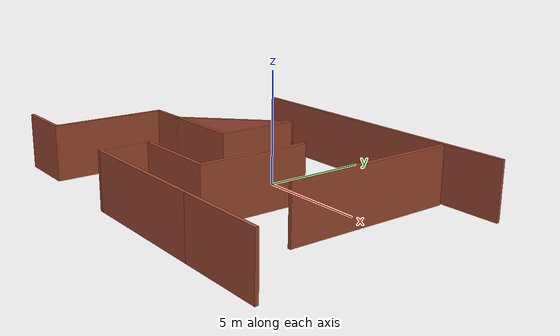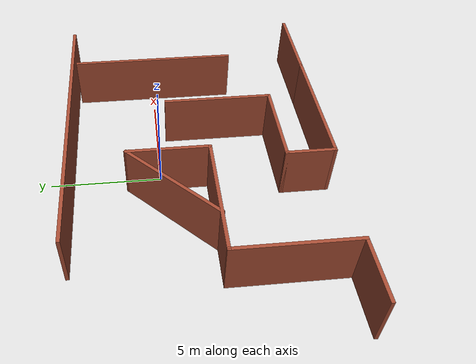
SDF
<?xml version='1.0'?>
<sdf version='1.6'>
  <model name='internal_walls_1'>
    <pose frame=''>0.106395 -1.71352 0 0 -0 0</pose>
    <link name='Wall_10'>
      <collision name='Wall_10_Collision'>
        <geometry>
          <box>
            <size>6.25 0.15 2.5</size>
          </box>
        </geometry>
        <pose frame=''>0 0 1.25 0 -0 0</pose>
      </collision>
      <visual name='Wall_10_Visual'>
        <pose frame=''>0 0 1.25 0 -0 0</pose>
        <geometry>
          <box>
            <size>6.25 0.15 2.5</size>
          </box>
        </geometry>
        <material>
          <script>
            <uri>file://media/materials/scripts/gazebo.material</uri>
            <name>Gazebo/Bricks</name>
          </script>
          <ambient>1 1 1 1</ambient>
        </material>
      </visual>
      <pose frame=''>1.70354 -5.72413 0 0 -0 3.14159</pose>
    </link>
    <link name='Wall_11'>
      <collision name='Wall_11_Collision'>
        <geometry>
          <box>
            <size>2.25 0.15 2.5</size>
          </box>
        </geometry>
        <pose frame=''>0 0 1.25 0 -0 0</pose>
      </collision>
      <visual name='Wall_11_Visual'>
        <pose frame=''>0 0 1.25 0 -0 0</pose>
        <geometry>
          <box>
            <size>2.25 0.15 2.5</size>
          </box>
        </geometry>
        <material>
          <script>
            <uri>file://media/materials/scripts/gazebo.material</uri>
            <name>Gazebo/Bricks</name>
          </script>
          <ambient>1 1 1 1</ambient>
        </material>
      </visual>
      <pose frame=''>-1.34646 -4.67413 0 0 -0 1.5708</pose>
    </link>
    <link name='Wall_12'>
      <collision name='Wall_12_Collision'>
        <geometry>
          <box>
            <size>4 0.15 2.5</size>
          </box>
        </geometry>
        <pose frame=''>0 0 1.25 0 -0 0</pose>
      </collision>
      <visual name='Wall_12_Visual'>
        <pose frame=''>0 0 1.25 0 -0 0</pose>
        <geometry>
          <box>
            <size>4 0.15 2.5</size>
          </box>
        </geometry>
        <material>
          <script>
            <uri>file://media/materials/scripts/gazebo.material</uri>
            <name>Gazebo/Bricks</name>
          </script>
          <ambient>1 1 1 1</ambient>
        </material>
      </visual>
      <pose frame=''>0.578537 -3.62413 0 0 -0 0</pose>
    </link>
    <link name='Wall_13'>
      <collision name='Wall_13_Collision'>
        <geometry>
          <box>
            <size>5 0.15 2.5</size>
          </box>
        </geometry>
        <pose frame=''>0 0 1.25 0 -0 0</pose>
      </collision>
      <visual name='Wall_13_Visual'>
        <pose frame=''>0 0 1.25 0 -0 0</pose>
        <geometry>
          <box>
            <size>5 0.15 2.5</size>
          </box>
        </geometry>
        <material>
          <script>
            <uri>file://media/materials/scripts/gazebo.material</uri>
            <name>Gazebo/Bricks</name>
          </script>
          <ambient>1 1 1 1</ambient>
        </material>
      </visual>
      <pose frame=''>2.50354 -1.19913 0 0 -0 1.5708</pose>
    </link>
    <link name='Wall_15'>
      <collision name='Wall_15_Collision'>
        <geometry>
          <box>
            <size>2.75 0.15 2.5</size>
          </box>
        </geometry>
        <pose frame=''>0 0 1.25 0 -0 0</pose>
      </collision>
      <visual name='Wall_15_Visual'>
        <pose frame=''>0 0 1.25 0 -0 0</pose>
        <geometry>
          <box>
            <size>2.75 0.15 2.5</size>
          </box>
        </geometry>
        <material>
          <script>
            <uri>file://media/materials/scripts/gazebo.material</uri>
            <name>Gazebo/Bricks</name>
          </script>
          <ambient>1 1 1 1</ambient>
        </material>
      </visual>
      <pose frame=''>-7.30354 -5.53465 0 0 -0 3.14159</pose>
    </link>
    <link name='Wall_17'>
      <collision name='Wall_17_Collision'>
        <geometry>
          <box>
            <size>5.25 0.15 2.5</size>
          </box>
        </geometry>
        <pose frame=''>0 0 1.25 0 -0 0</pose>
      </collision>
      <visual name='Wall_17_Visual'>
        <pose frame=''>0 0 1.25 0 -0 0</pose>
        <geometry>
          <box>
            <size>5.25 0.15 2.5</size>
          </box>
        </geometry>
        <material>
          <script>
            <uri>file://media/materials/scripts/gazebo.material</uri>
            <name>Gazebo/Bricks</name>
          </script>
          <ambient>1 1 1 1</ambient>
        </material>
      </visual>
      <pose frame=''>-6.00354 -2.98465 0 0 -0 1.5708</pose>
    </link>
    <link name='Wall_18'>
      <collision name='Wall_18_Collision'>
        <geometry>
          <box>
            <size>5.5 0.15 2.5</size>
          </box>
        </geometry>
        <pose frame=''>0 0 1.25 0 -0 0</pose>
      </collision>
      <visual name='Wall_18_Visual'>
        <pose frame=''>0 0 1.25 0 -0 0</pose>
        <geometry>
          <box>
            <size>5.5 0.15 2.5</size>
          </box>
        </geometry>
        <material>
          <script>
            <uri>file://media/materials/scripts/gazebo.material</uri>
            <name>Gazebo/Bricks</name>
          </script>
          <ambient>1 1 1 1</ambient>
        </material>
      </visual>
      <pose frame=''>-3.32854 -0.434653 0 0 -0 0</pose>
    </link>
    <link name='Wall_19'>
      <collision name='Wall_19_Collision'>
        <geometry>
          <box>
            <size>3.75 0.15 2.5</size>
          </box>
        </geometry>
        <pose frame=''>0 0 1.25 0 -0 0</pose>
      </collision>
      <visual name='Wall_19_Visual'>
        <pose frame=''>0 0 1.25 0 -0 0</pose>
        <geometry>
          <box>
            <size>3.75 0.15 2.5</size>
          </box>
        </geometry>
        <material>
          <script>
            <uri>file://media/materials/scripts/gazebo.material</uri>
            <name>Gazebo/Bricks</name>
          </script>
          <ambient>1 1 1 1</ambient>
        </material>
      </visual>
      <pose frame=''>-0.653536 1.36535 0 0 -0 1.5708</pose>
    </link>
    <link name='Wall_20'>
      <collision name='Wall_20_Collision'>
        <geometry>
          <box>
            <size>5.25 0.15 2.5</size>
          </box>
        </geometry>
        <pose frame=''>0 0 1.25 0 -0 0</pose>
      </collision>
      <visual name='Wall_20_Visual'>
        <pose frame=''>0 0 1.25 0 -0 0</pose>
        <geometry>
          <box>
            <size>5.25 0.15 2.5</size>
          </box>
        </geometry>
        <material>
          <script>
            <uri>file://media/materials/scripts/gazebo.material</uri>
            <name>Gazebo/Bricks</name>
          </script>
          <ambient>1 1 1 1</ambient>
        </material>
      </visual>
      <pose frame=''>-2.45666 1.36222 0 0 0 -2.35619</pose>
    </link>
    <link name='Wall_23'>
      <collision name='Wall_23_Collision'>
        <geometry>
          <box>
            <size>13.75 0.15 2.5</size>
          </box>
        </geometry>
        <pose frame=''>0 0 1.25 0 -0 0</pose>
      </collision>
      <visual name='Wall_23_Visual'>
        <pose frame=''>0 0 1.25 0 -0 0</pose>
        <geometry>
          <box>
            <size>13.75 0.15 2.5</size>
          </box>
        </geometry>
        <material>
          <script>
            <uri>file://media/materials/scripts/gazebo.material</uri>
            <name>Gazebo/Bricks</name>
          </script>
          <ambient>1 1 1 1</ambient>
        </material>
      </visual>
      <pose frame=''>1.72694 5.72413 0 0 -0 0</pose>
    </link>
    <link name='Wall_25'>
      <collision name='Wall_25_Collision'>
        <geometry>
          <box>
            <size>7.75 0.15 2.5</size>
          </box>
        </geometry>
        <pose frame=''>0 0 1.25 0 -0 0</pose>
      </collision>
      <visual name='Wall_25_Visual'>
        <pose frame=''>0 0 1.25 0 -0 0</pose>
        <geometry>
          <box>
            <size>7.75 0.15 2.5</size>
          </box>
        </geometry>
        <material>
          <script>
            <uri>file://media/materials/scripts/gazebo.material</uri>
            <name>Gazebo/Bricks</name>
          </script>
          <ambient>1 1 1 1</ambient>
        </material>
      </visual>
      <pose frame=''>5.90659 1.64499 0 0 0 -1.5708</pose>
    </link>
    <link name='Wall_8'>
      <collision name='Wall_8_Collision'>
        <geometry>
          <box>
            <size>4 0.15 2.5</size>
          </box>
        </geometry>
        <pose frame=''>0 0 1.25 0 -0 0</pose>
      </collision>
      <visual name='Wall_8_Visual'>
        <pose frame=''>0 0 1.25 0 -0 0</pose>
        <geometry>
          <box>
            <size>4 0.15 2.5</size>
          </box>
        </geometry>
        <material>
          <script>
            <uri>file://media/materials/scripts/gazebo.material</uri>
            <name>Gazebo/Bricks</name>
          </script>
          <ambient>1 1 1 1</ambient>
        </material>
      </visual>
      <pose frame=''>6.67854 -5.72413 0 0 -0 0</pose>
    </link>
    <static>1</static>
  </model>
</sdf>
